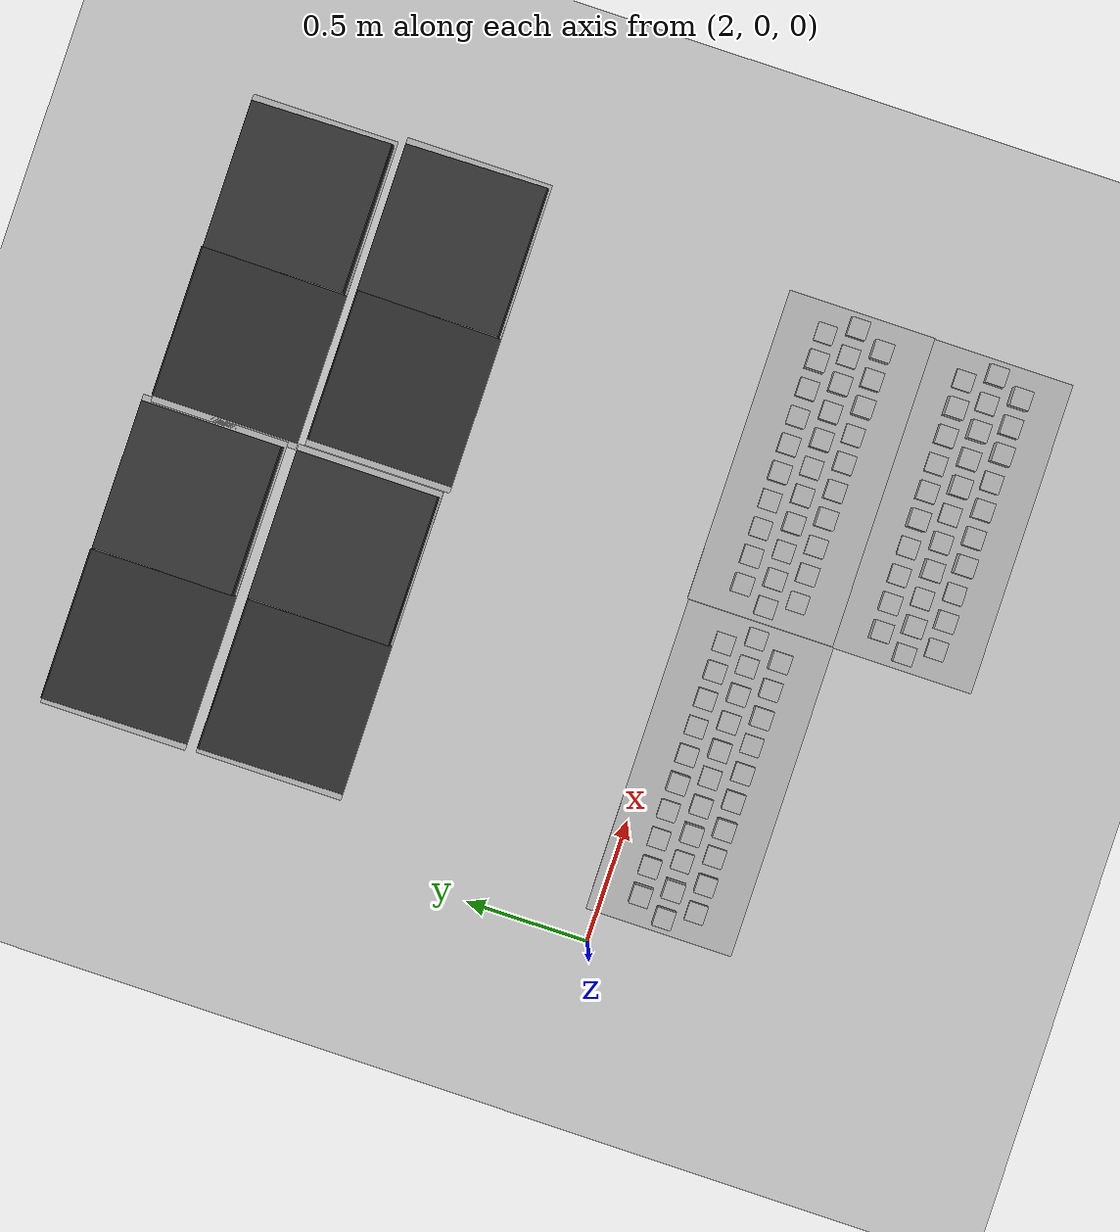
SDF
<sdf version="1.7">
 <world name="default">
  <model name="ground_plane">
   <static>1</static>
   <link name="link">
    <collision name="collision">
     <geometry><plane><normal>0 0 1</normal><size>100 100</size></plane></geometry>
     <surface>
      <contact><collide_bitmask>65535</collide_bitmask></contact>
      <friction><ode><mu>100</mu><mu2>50</mu2></ode></friction>
     </surface>
    </collision>
    <visual name="visual">
     <cast_shadows>0</cast_shadows>
     <geometry><plane><normal>0 0 1</normal><size>100 100</size></plane></geometry>
     <material>
      <script><uri>file://media/materials/scripts/gazebo.material</uri><name>Gazebo/Grey</name></script>
     </material>
    </visual>
   </link>
  </model>
  <model name="frc2016_roughterrain_1">
   <static>1</static>
   <link name="link">
    <visual name="platform">
     <pose>0 0 0.08269 0 -0 0</pose>
     <geometry><box><size>1.27 0.5969 0.003175</size></box></geometry>
    </visual>
    <collision name="platform">
     <pose>0 0 0.08269 0 -0 0</pose>
     <geometry><box><size>1.27 0.5969 0.003175</size></box></geometry>
    </collision>
    <visual name="row1_block1_sm">
     <pose>0.51435 0.1143 0.09698 0 -0 0</pose>
     <geometry><box><size>0.0762 0.0762 0.0254</size></box></geometry>
    </visual>
    <collision name="row1_block1_sm">
     <pose>0.51435 0.1143 0.09698 0 -0 0</pose>
     <geometry><box><size>0.0762 0.0762 0.0254</size></box></geometry>
    </collision>
    <visual name="row1_block2_lg">
     <pose>0.40005 0.1143 0.12238 0 -0 0</pose>
     <geometry><box><size>0.0762 0.0762 0.0762</size></box></geometry>
    </visual>
    <collision name="row1_block2_lg">
     <pose>0.40005 0.1143 0.12238 0 -0 0</pose>
     <geometry><box><size>0.0762 0.0762 0.0762</size></box></geometry>
    </collision>
    <visual name="row1_block3_md">
     <pose>0.28575 0.1143 0.10968 0 -0 0</pose>
     <geometry><box><size>0.0762 0.0762 0.0508</size></box></geometry>
    </visual>
    <collision name="row1_block3_md">
     <pose>0.28575 0.1143 0.10968 0 -0 0</pose>
     <geometry><box><size>0.0762 0.0762 0.0508</size></box></geometry>
    </collision>
    <visual name="row1_block4_sm">
     <pose>0.17145 0.1143 0.09698 0 -0 0</pose>
     <geometry><box><size>0.0762 0.0762 0.0254</size></box></geometry>
    </visual>
    <collision name="row1_block4_sm">
     <pose>0.17145 0.1143 0.09698 0 -0 0</pose>
     <geometry><box><size>0.0762 0.0762 0.0254</size></box></geometry>
    </collision>
    <visual name="row1_block5_md">
     <pose>0.05715 0.1143 0.10968 0 -0 0</pose>
     <geometry><box><size>0.0762 0.0762 0.0508</size></box></geometry>
    </visual>
    <collision name="row1_block5_md">
     <pose>0.05715 0.1143 0.10968 0 -0 0</pose>
     <geometry><box><size>0.0762 0.0762 0.0508</size></box></geometry>
    </collision>
    <visual name="row1_block6_lg">
     <pose>-0.05715 0.1143 0.12238 0 -0 0</pose>
     <geometry><box><size>0.0762 0.0762 0.0762</size></box></geometry>
    </visual>
    <collision name="row1_block6_lg">
     <pose>-0.05715 0.1143 0.12238 0 -0 0</pose>
     <geometry><box><size>0.0762 0.0762 0.0762</size></box></geometry>
    </collision>
    <visual name="row1_block7_sm">
     <pose>-0.17145 0.1143 0.09698 0 -0 0</pose>
     <geometry><box><size>0.0762 0.0762 0.0254</size></box></geometry>
    </visual>
    <collision name="row1_block7_sm">
     <pose>-0.17145 0.1143 0.09698 0 -0 0</pose>
     <geometry><box><size>0.0762 0.0762 0.0254</size></box></geometry>
    </collision>
    <visual name="row1_block8_sm">
     <pose>-0.28575 0.1143 0.09698 0 -0 0</pose>
     <geometry><box><size>0.0762 0.0762 0.0254</size></box></geometry>
    </visual>
    <collision name="row1_block8_sm">
     <pose>-0.28575 0.1143 0.09698 0 -0 0</pose>
     <geometry><box><size>0.0762 0.0762 0.0254</size></box></geometry>
    </collision>
    <visual name="row1_block9_md">
     <pose>-0.40005 0.1143 0.10968 0 -0 0</pose>
     <geometry><box><size>0.0762 0.0762 0.0508</size></box></geometry>
    </visual>
    <collision name="row1_block9_md">
     <pose>-0.40005 0.1143 0.10968 0 -0 0</pose>
     <geometry><box><size>0.0762 0.0762 0.0508</size></box></geometry>
    </collision>
    <visual name="row1_block10_lg">
     <pose>-0.51435 0.1143 0.12238 0 -0 0</pose>
     <geometry><box><size>0.0762 0.0762 0.0762</size></box></geometry>
    </visual>
    <collision name="row1_block10_lg">
     <pose>-0.51435 0.1143 0.12238 0 -0 0</pose>
     <geometry><box><size>0.0762 0.0762 0.0762</size></box></geometry>
    </collision>
    <visual name="row2_block1_md">
     <pose>0.5715 0 0.10968 0 -0 0</pose>
     <geometry><box><size>0.0762 0.0762 0.0508</size></box></geometry>
    </visual>
    <collision name="row2_block1_md">
     <pose>0.5715 0 0.10968 0 -0 0</pose>
     <geometry><box><size>0.0762 0.0762 0.0508</size></box></geometry>
    </collision>
    <visual name="row2_block2_sm">
     <pose>0.4572 0 0.09698 0 -0 0</pose>
     <geometry><box><size>0.0762 0.0762 0.0254</size></box></geometry>
    </visual>
    <collision name="row2_block2_sm">
     <pose>0.4572 0 0.09698 0 -0 0</pose>
     <geometry><box><size>0.0762 0.0762 0.0254</size></box></geometry>
    </collision>
    <visual name="row2_block3_lg">
     <pose>0.3429 0 0.12238 0 -0 0</pose>
     <geometry><box><size>0.0762 0.0762 0.0762</size></box></geometry>
    </visual>
    <collision name="row2_block3_lg">
     <pose>0.3429 0 0.12238 0 -0 0</pose>
     <geometry><box><size>0.0762 0.0762 0.0762</size></box></geometry>
    </collision>
    <visual name="row2_block4_md">
     <pose>0.2286 0 0.10968 0 -0 0</pose>
     <geometry><box><size>0.0762 0.0762 0.0508</size></box></geometry>
    </visual>
    <collision name="row2_block4_md">
     <pose>0.2286 0 0.10968 0 -0 0</pose>
     <geometry><box><size>0.0762 0.0762 0.0508</size></box></geometry>
    </collision>
    <visual name="row2_block5_lg">
     <pose>0.1143 0 0.12238 0 -0 0</pose>
     <geometry><box><size>0.0762 0.0762 0.0762</size></box></geometry>
    </visual>
    <collision name="row2_block5_lg">
     <pose>0.1143 0 0.12238 0 -0 0</pose>
     <geometry><box><size>0.0762 0.0762 0.0762</size></box></geometry>
    </collision>
    <visual name="row2_block6_sm">
     <pose>0 0 0.09698 0 -0 0</pose>
     <geometry><box><size>0.0762 0.0762 0.0254</size></box></geometry>
    </visual>
    <collision name="row2_block6_sm">
     <pose>0 0 0.09698 0 -0 0</pose>
     <geometry><box><size>0.0762 0.0762 0.0254</size></box></geometry>
    </collision>
    <visual name="row2_block7_md">
     <pose>-0.1143 0 0.10968 0 -0 0</pose>
     <geometry><box><size>0.0762 0.0762 0.0508</size></box></geometry>
    </visual>
    <collision name="row2_block7_md">
     <pose>-0.1143 0 0.10968 0 -0 0</pose>
     <geometry><box><size>0.0762 0.0762 0.0508</size></box></geometry>
    </collision>
    <visual name="row2_block8_lg">
     <pose>-0.2286 0 0.12238 0 -0 0</pose>
     <geometry><box><size>0.0762 0.0762 0.0762</size></box></geometry>
    </visual>
    <collision name="row2_block8_lg">
     <pose>-0.2286 0 0.12238 0 -0 0</pose>
     <geometry><box><size>0.0762 0.0762 0.0762</size></box></geometry>
    </collision>
    <visual name="row2_block9_sm">
     <pose>-0.3429 0 0.09698 0 -0 0</pose>
     <geometry><box><size>0.0762 0.0762 0.0254</size></box></geometry>
    </visual>
    <collision name="row2_block9_sm">
     <pose>-0.3429 0 0.09698 0 -0 0</pose>
     <geometry><box><size>0.0762 0.0762 0.0254</size></box></geometry>
    </collision>
    <visual name="row2_block10_lg">
     <pose>-0.4572 0 0.12238 0 -0 0</pose>
     <geometry><box><size>0.0762 0.0762 0.0762</size></box></geometry>
    </visual>
    <collision name="row2_block10_lg">
     <pose>-0.4572 0 0.12238 0 -0 0</pose>
     <geometry><box><size>0.0762 0.0762 0.0762</size></box></geometry>
    </collision>
    <visual name="row2_block11_md">
     <pose>-0.5715 0 0.10968 0 -0 0</pose>
     <geometry><box><size>0.0762 0.0762 0.0508</size></box></geometry>
    </visual>
    <collision name="row2_block11_md">
     <pose>-0.5715 0 0.10968 0 -0 0</pose>
     <geometry><box><size>0.0762 0.0762 0.0508</size></box></geometry>
    </collision>
    <visual name="row3_block1_lg">
     <pose>0.51435 -0.1143 0.12238 0 -0 0</pose>
     <geometry><box><size>0.0762 0.0762 0.0762</size></box></geometry>
    </visual>
    <collision name="row3_block1_lg">
     <pose>0.51435 -0.1143 0.12238 0 -0 0</pose>
     <geometry><box><size>0.0762 0.0762 0.0762</size></box></geometry>
    </collision>
    <visual name="row3_block2_md">
     <pose>0.40005 -0.1143 0.10968 0 -0 0</pose>
     <geometry><box><size>0.0762 0.0762 0.0508</size></box></geometry>
    </visual>
    <collision name="row3_block2_md">
     <pose>0.40005 -0.1143 0.10968 0 -0 0</pose>
     <geometry><box><size>0.0762 0.0762 0.0508</size></box></geometry>
    </collision>
    <visual name="row3_block3_lg">
     <pose>0.28575 -0.1143 0.12238 0 -0 0</pose>
     <geometry><box><size>0.0762 0.0762 0.0762</size></box></geometry>
    </visual>
    <collision name="row3_block3_lg">
     <pose>0.28575 -0.1143 0.12238 0 -0 0</pose>
     <geometry><box><size>0.0762 0.0762 0.0762</size></box></geometry>
    </collision>
    <visual name="row3_block4_sm">
     <pose>0.17145 -0.1143 0.09698 0 -0 0</pose>
     <geometry><box><size>0.0762 0.0762 0.0254</size></box></geometry>
    </visual>
    <collision name="row3_block4_sm">
     <pose>0.17145 -0.1143 0.09698 0 -0 0</pose>
     <geometry><box><size>0.0762 0.0762 0.0254</size></box></geometry>
    </collision>
    <visual name="row3_block5_md">
     <pose>0.05715 -0.1143 0.10968 0 -0 0</pose>
     <geometry><box><size>0.0762 0.0762 0.0508</size></box></geometry>
    </visual>
    <collision name="row3_block5_md">
     <pose>0.05715 -0.1143 0.10968 0 -0 0</pose>
     <geometry><box><size>0.0762 0.0762 0.0508</size></box></geometry>
    </collision>
    <visual name="row3_block6_md">
     <pose>-0.05715 -0.1143 0.10968 0 -0 0</pose>
     <geometry><box><size>0.0762 0.0762 0.0508</size></box></geometry>
    </visual>
    <collision name="row3_block6_md">
     <pose>-0.05715 -0.1143 0.10968 0 -0 0</pose>
     <geometry><box><size>0.0762 0.0762 0.0508</size></box></geometry>
    </collision>
    <visual name="row3_block7_lg">
     <pose>-0.17145 -0.1143 0.12238 0 -0 0</pose>
     <geometry><box><size>0.0762 0.0762 0.0762</size></box></geometry>
    </visual>
    <collision name="row3_block7_lg">
     <pose>-0.17145 -0.1143 0.12238 0 -0 0</pose>
     <geometry><box><size>0.0762 0.0762 0.0762</size></box></geometry>
    </collision>
    <visual name="row3_block8_sm">
     <pose>-0.28575 -0.1143 0.09698 0 -0 0</pose>
     <geometry><box><size>0.0762 0.0762 0.0254</size></box></geometry>
    </visual>
    <collision name="row3_block8_sm">
     <pose>-0.28575 -0.1143 0.09698 0 -0 0</pose>
     <geometry><box><size>0.0762 0.0762 0.0254</size></box></geometry>
    </collision>
    <visual name="row3_block9_md">
     <pose>-0.40005 -0.1143 0.10968 0 -0 0</pose>
     <geometry><box><size>0.0762 0.0762 0.0508</size></box></geometry>
    </visual>
    <collision name="row3_block9_md">
     <pose>-0.40005 -0.1143 0.10968 0 -0 0</pose>
     <geometry><box><size>0.0762 0.0762 0.0508</size></box></geometry>
    </collision>
    <visual name="row3_block10_sm">
     <pose>-0.51435 -0.1143 0.09698 0 -0 0</pose>
     <geometry><box><size>0.0762 0.0762 0.0254</size></box></geometry>
    </visual>
    <collision name="row3_block10_sm">
     <pose>-0.51435 -0.1143 0.09698 0 -0 0</pose>
     <geometry><box><size>0.0762 0.0762 0.0254</size></box></geometry>
    </collision>
   </link>
   <pose>2.76949 -0.245026 0 0 -0 0</pose>
  </model>
  <model name="frc2016_roughterrain_3">
   <static>1</static>
   <link name="link">
    <visual name="platform">
     <pose>0 0 0.08269 0 -0 0</pose>
     <geometry><box><size>1.27 0.5969 0.003175</size></box></geometry>
    </visual>
    <collision name="platform">
     <pose>0 0 0.08269 0 -0 0</pose>
     <geometry><box><size>1.27 0.5969 0.003175</size></box></geometry>
    </collision>
    <visual name="row1_block1_sm">
     <pose>0.51435 0.1143 0.09698 0 -0 0</pose>
     <geometry><box><size>0.0762 0.0762 0.0254</size></box></geometry>
    </visual>
    <collision name="row1_block1_sm">
     <pose>0.51435 0.1143 0.09698 0 -0 0</pose>
     <geometry><box><size>0.0762 0.0762 0.0254</size></box></geometry>
    </collision>
    <visual name="row1_block2_lg">
     <pose>0.40005 0.1143 0.12238 0 -0 0</pose>
     <geometry><box><size>0.0762 0.0762 0.0762</size></box></geometry>
    </visual>
    <collision name="row1_block2_lg">
     <pose>0.40005 0.1143 0.12238 0 -0 0</pose>
     <geometry><box><size>0.0762 0.0762 0.0762</size></box></geometry>
    </collision>
    <visual name="row1_block3_md">
     <pose>0.28575 0.1143 0.10968 0 -0 0</pose>
     <geometry><box><size>0.0762 0.0762 0.0508</size></box></geometry>
    </visual>
    <collision name="row1_block3_md">
     <pose>0.28575 0.1143 0.10968 0 -0 0</pose>
     <geometry><box><size>0.0762 0.0762 0.0508</size></box></geometry>
    </collision>
    <visual name="row1_block4_sm">
     <pose>0.17145 0.1143 0.09698 0 -0 0</pose>
     <geometry><box><size>0.0762 0.0762 0.0254</size></box></geometry>
    </visual>
    <collision name="row1_block4_sm">
     <pose>0.17145 0.1143 0.09698 0 -0 0</pose>
     <geometry><box><size>0.0762 0.0762 0.0254</size></box></geometry>
    </collision>
    <visual name="row1_block5_md">
     <pose>0.05715 0.1143 0.10968 0 -0 0</pose>
     <geometry><box><size>0.0762 0.0762 0.0508</size></box></geometry>
    </visual>
    <collision name="row1_block5_md">
     <pose>0.05715 0.1143 0.10968 0 -0 0</pose>
     <geometry><box><size>0.0762 0.0762 0.0508</size></box></geometry>
    </collision>
    <visual name="row1_block6_lg">
     <pose>-0.05715 0.1143 0.12238 0 -0 0</pose>
     <geometry><box><size>0.0762 0.0762 0.0762</size></box></geometry>
    </visual>
    <collision name="row1_block6_lg">
     <pose>-0.05715 0.1143 0.12238 0 -0 0</pose>
     <geometry><box><size>0.0762 0.0762 0.0762</size></box></geometry>
    </collision>
    <visual name="row1_block7_sm">
     <pose>-0.17145 0.1143 0.09698 0 -0 0</pose>
     <geometry><box><size>0.0762 0.0762 0.0254</size></box></geometry>
    </visual>
    <collision name="row1_block7_sm">
     <pose>-0.17145 0.1143 0.09698 0 -0 0</pose>
     <geometry><box><size>0.0762 0.0762 0.0254</size></box></geometry>
    </collision>
    <visual name="row1_block8_sm">
     <pose>-0.28575 0.1143 0.09698 0 -0 0</pose>
     <geometry><box><size>0.0762 0.0762 0.0254</size></box></geometry>
    </visual>
    <collision name="row1_block8_sm">
     <pose>-0.28575 0.1143 0.09698 0 -0 0</pose>
     <geometry><box><size>0.0762 0.0762 0.0254</size></box></geometry>
    </collision>
    <visual name="row1_block9_md">
     <pose>-0.40005 0.1143 0.10968 0 -0 0</pose>
     <geometry><box><size>0.0762 0.0762 0.0508</size></box></geometry>
    </visual>
    <collision name="row1_block9_md">
     <pose>-0.40005 0.1143 0.10968 0 -0 0</pose>
     <geometry><box><size>0.0762 0.0762 0.0508</size></box></geometry>
    </collision>
    <visual name="row1_block10_lg">
     <pose>-0.51435 0.1143 0.12238 0 -0 0</pose>
     <geometry><box><size>0.0762 0.0762 0.0762</size></box></geometry>
    </visual>
    <collision name="row1_block10_lg">
     <pose>-0.51435 0.1143 0.12238 0 -0 0</pose>
     <geometry><box><size>0.0762 0.0762 0.0762</size></box></geometry>
    </collision>
    <visual name="row2_block1_md">
     <pose>0.5715 0 0.10968 0 -0 0</pose>
     <geometry><box><size>0.0762 0.0762 0.0508</size></box></geometry>
    </visual>
    <collision name="row2_block1_md">
     <pose>0.5715 0 0.10968 0 -0 0</pose>
     <geometry><box><size>0.0762 0.0762 0.0508</size></box></geometry>
    </collision>
    <visual name="row2_block2_sm">
     <pose>0.4572 0 0.09698 0 -0 0</pose>
     <geometry><box><size>0.0762 0.0762 0.0254</size></box></geometry>
    </visual>
    <collision name="row2_block2_sm">
     <pose>0.4572 0 0.09698 0 -0 0</pose>
     <geometry><box><size>0.0762 0.0762 0.0254</size></box></geometry>
    </collision>
    <visual name="row2_block3_lg">
     <pose>0.3429 0 0.12238 0 -0 0</pose>
     <geometry><box><size>0.0762 0.0762 0.0762</size></box></geometry>
    </visual>
    <collision name="row2_block3_lg">
     <pose>0.3429 0 0.12238 0 -0 0</pose>
     <geometry><box><size>0.0762 0.0762 0.0762</size></box></geometry>
    </collision>
    <visual name="row2_block4_md">
     <pose>0.2286 0 0.10968 0 -0 0</pose>
     <geometry><box><size>0.0762 0.0762 0.0508</size></box></geometry>
    </visual>
    <collision name="row2_block4_md">
     <pose>0.2286 0 0.10968 0 -0 0</pose>
     <geometry><box><size>0.0762 0.0762 0.0508</size></box></geometry>
    </collision>
    <visual name="row2_block5_lg">
     <pose>0.1143 0 0.12238 0 -0 0</pose>
     <geometry><box><size>0.0762 0.0762 0.0762</size></box></geometry>
    </visual>
    <collision name="row2_block5_lg">
     <pose>0.1143 0 0.12238 0 -0 0</pose>
     <geometry><box><size>0.0762 0.0762 0.0762</size></box></geometry>
    </collision>
    <visual name="row2_block6_sm">
     <pose>0 0 0.09698 0 -0 0</pose>
     <geometry><box><size>0.0762 0.0762 0.0254</size></box></geometry>
    </visual>
    <collision name="row2_block6_sm">
     <pose>0 0 0.09698 0 -0 0</pose>
     <geometry><box><size>0.0762 0.0762 0.0254</size></box></geometry>
    </collision>
    <visual name="row2_block7_md">
     <pose>-0.1143 0 0.10968 0 -0 0</pose>
     <geometry><box><size>0.0762 0.0762 0.0508</size></box></geometry>
    </visual>
    <collision name="row2_block7_md">
     <pose>-0.1143 0 0.10968 0 -0 0</pose>
     <geometry><box><size>0.0762 0.0762 0.0508</size></box></geometry>
    </collision>
    <visual name="row2_block8_lg">
     <pose>-0.2286 0 0.12238 0 -0 0</pose>
     <geometry><box><size>0.0762 0.0762 0.0762</size></box></geometry>
    </visual>
    <collision name="row2_block8_lg">
     <pose>-0.2286 0 0.12238 0 -0 0</pose>
     <geometry><box><size>0.0762 0.0762 0.0762</size></box></geometry>
    </collision>
    <visual name="row2_block9_sm">
     <pose>-0.3429 0 0.09698 0 -0 0</pose>
     <geometry><box><size>0.0762 0.0762 0.0254</size></box></geometry>
    </visual>
    <collision name="row2_block9_sm">
     <pose>-0.3429 0 0.09698 0 -0 0</pose>
     <geometry><box><size>0.0762 0.0762 0.0254</size></box></geometry>
    </collision>
    <visual name="row2_block10_lg">
     <pose>-0.4572 0 0.12238 0 -0 0</pose>
     <geometry><box><size>0.0762 0.0762 0.0762</size></box></geometry>
    </visual>
    <collision name="row2_block10_lg">
     <pose>-0.4572 0 0.12238 0 -0 0</pose>
     <geometry><box><size>0.0762 0.0762 0.0762</size></box></geometry>
    </collision>
    <visual name="row2_block11_md">
     <pose>-0.5715 0 0.10968 0 -0 0</pose>
     <geometry><box><size>0.0762 0.0762 0.0508</size></box></geometry>
    </visual>
    <collision name="row2_block11_md">
     <pose>-0.5715 0 0.10968 0 -0 0</pose>
     <geometry><box><size>0.0762 0.0762 0.0508</size></box></geometry>
    </collision>
    <visual name="row3_block1_lg">
     <pose>0.51435 -0.1143 0.12238 0 -0 0</pose>
     <geometry><box><size>0.0762 0.0762 0.0762</size></box></geometry>
    </visual>
    <collision name="row3_block1_lg">
     <pose>0.51435 -0.1143 0.12238 0 -0 0</pose>
     <geometry><box><size>0.0762 0.0762 0.0762</size></box></geometry>
    </collision>
    <visual name="row3_block2_md">
     <pose>0.40005 -0.1143 0.10968 0 -0 0</pose>
     <geometry><box><size>0.0762 0.0762 0.0508</size></box></geometry>
    </visual>
    <collision name="row3_block2_md">
     <pose>0.40005 -0.1143 0.10968 0 -0 0</pose>
     <geometry><box><size>0.0762 0.0762 0.0508</size></box></geometry>
    </collision>
    <visual name="row3_block3_lg">
     <pose>0.28575 -0.1143 0.12238 0 -0 0</pose>
     <geometry><box><size>0.0762 0.0762 0.0762</size></box></geometry>
    </visual>
    <collision name="row3_block3_lg">
     <pose>0.28575 -0.1143 0.12238 0 -0 0</pose>
     <geometry><box><size>0.0762 0.0762 0.0762</size></box></geometry>
    </collision>
    <visual name="row3_block4_sm">
     <pose>0.17145 -0.1143 0.09698 0 -0 0</pose>
     <geometry><box><size>0.0762 0.0762 0.0254</size></box></geometry>
    </visual>
    <collision name="row3_block4_sm">
     <pose>0.17145 -0.1143 0.09698 0 -0 0</pose>
     <geometry><box><size>0.0762 0.0762 0.0254</size></box></geometry>
    </collision>
    <visual name="row3_block5_md">
     <pose>0.05715 -0.1143 0.10968 0 -0 0</pose>
     <geometry><box><size>0.0762 0.0762 0.0508</size></box></geometry>
    </visual>
    <collision name="row3_block5_md">
     <pose>0.05715 -0.1143 0.10968 0 -0 0</pose>
     <geometry><box><size>0.0762 0.0762 0.0508</size></box></geometry>
    </collision>
    <visual name="row3_block6_md">
     <pose>-0.05715 -0.1143 0.10968 0 -0 0</pose>
     <geometry><box><size>0.0762 0.0762 0.0508</size></box></geometry>
    </visual>
    <collision name="row3_block6_md">
     <pose>-0.05715 -0.1143 0.10968 0 -0 0</pose>
     <geometry><box><size>0.0762 0.0762 0.0508</size></box></geometry>
    </collision>
    <visual name="row3_block7_lg">
     <pose>-0.17145 -0.1143 0.12238 0 -0 0</pose>
     <geometry><box><size>0.0762 0.0762 0.0762</size></box></geometry>
    </visual>
    <collision name="row3_block7_lg">
     <pose>-0.17145 -0.1143 0.12238 0 -0 0</pose>
     <geometry><box><size>0.0762 0.0762 0.0762</size></box></geometry>
    </collision>
    <visual name="row3_block8_sm">
     <pose>-0.28575 -0.1143 0.09698 0 -0 0</pose>
     <geometry><box><size>0.0762 0.0762 0.0254</size></box></geometry>
    </visual>
    <collision name="row3_block8_sm">
     <pose>-0.28575 -0.1143 0.09698 0 -0 0</pose>
     <geometry><box><size>0.0762 0.0762 0.0254</size></box></geometry>
    </collision>
    <visual name="row3_block9_md">
     <pose>-0.40005 -0.1143 0.10968 0 -0 0</pose>
     <geometry><box><size>0.0762 0.0762 0.0508</size></box></geometry>
    </visual>
    <collision name="row3_block9_md">
     <pose>-0.40005 -0.1143 0.10968 0 -0 0</pose>
     <geometry><box><size>0.0762 0.0762 0.0508</size></box></geometry>
    </collision>
    <visual name="row3_block10_sm">
     <pose>-0.51435 -0.1143 0.09698 0 -0 0</pose>
     <geometry><box><size>0.0762 0.0762 0.0254</size></box></geometry>
    </visual>
    <collision name="row3_block10_sm">
     <pose>-0.51435 -0.1143 0.09698 0 -0 0</pose>
     <geometry><box><size>0.0762 0.0762 0.0254</size></box></geometry>
    </collision>
   </link>
   <pose>4.04009 -0.239486 0 0 -0 0</pose>
  </model>
  <model name="frc2016_roughterrain_4">
   <static>1</static>
   <link name="link">
    <visual name="platform">
     <pose>0 0 0.08269 0 -0 0</pose>
     <geometry><box><size>1.27 0.5969 0.003175</size></box></geometry>
    </visual>
    <collision name="platform">
     <pose>0 0 0.08269 0 -0 0</pose>
     <geometry><box><size>1.27 0.5969 0.003175</size></box></geometry>
    </collision>
    <visual name="row1_block1_sm">
     <pose>0.51435 0.1143 0.09698 0 -0 0</pose>
     <geometry><box><size>0.0762 0.0762 0.0254</size></box></geometry>
    </visual>
    <collision name="row1_block1_sm">
     <pose>0.51435 0.1143 0.09698 0 -0 0</pose>
     <geometry><box><size>0.0762 0.0762 0.0254</size></box></geometry>
    </collision>
    <visual name="row1_block2_lg">
     <pose>0.40005 0.1143 0.12238 0 -0 0</pose>
     <geometry><box><size>0.0762 0.0762 0.0762</size></box></geometry>
    </visual>
    <collision name="row1_block2_lg">
     <pose>0.40005 0.1143 0.12238 0 -0 0</pose>
     <geometry><box><size>0.0762 0.0762 0.0762</size></box></geometry>
    </collision>
    <visual name="row1_block3_md">
     <pose>0.28575 0.1143 0.10968 0 -0 0</pose>
     <geometry><box><size>0.0762 0.0762 0.0508</size></box></geometry>
    </visual>
    <collision name="row1_block3_md">
     <pose>0.28575 0.1143 0.10968 0 -0 0</pose>
     <geometry><box><size>0.0762 0.0762 0.0508</size></box></geometry>
    </collision>
    <visual name="row1_block4_sm">
     <pose>0.17145 0.1143 0.09698 0 -0 0</pose>
     <geometry><box><size>0.0762 0.0762 0.0254</size></box></geometry>
    </visual>
    <collision name="row1_block4_sm">
     <pose>0.17145 0.1143 0.09698 0 -0 0</pose>
     <geometry><box><size>0.0762 0.0762 0.0254</size></box></geometry>
    </collision>
    <visual name="row1_block5_md">
     <pose>0.05715 0.1143 0.10968 0 -0 0</pose>
     <geometry><box><size>0.0762 0.0762 0.0508</size></box></geometry>
    </visual>
    <collision name="row1_block5_md">
     <pose>0.05715 0.1143 0.10968 0 -0 0</pose>
     <geometry><box><size>0.0762 0.0762 0.0508</size></box></geometry>
    </collision>
    <visual name="row1_block6_lg">
     <pose>-0.05715 0.1143 0.12238 0 -0 0</pose>
     <geometry><box><size>0.0762 0.0762 0.0762</size></box></geometry>
    </visual>
    <collision name="row1_block6_lg">
     <pose>-0.05715 0.1143 0.12238 0 -0 0</pose>
     <geometry><box><size>0.0762 0.0762 0.0762</size></box></geometry>
    </collision>
    <visual name="row1_block7_sm">
     <pose>-0.17145 0.1143 0.09698 0 -0 0</pose>
     <geometry><box><size>0.0762 0.0762 0.0254</size></box></geometry>
    </visual>
    <collision name="row1_block7_sm">
     <pose>-0.17145 0.1143 0.09698 0 -0 0</pose>
     <geometry><box><size>0.0762 0.0762 0.0254</size></box></geometry>
    </collision>
    <visual name="row1_block8_sm">
     <pose>-0.28575 0.1143 0.09698 0 -0 0</pose>
     <geometry><box><size>0.0762 0.0762 0.0254</size></box></geometry>
    </visual>
    <collision name="row1_block8_sm">
     <pose>-0.28575 0.1143 0.09698 0 -0 0</pose>
     <geometry><box><size>0.0762 0.0762 0.0254</size></box></geometry>
    </collision>
    <visual name="row1_block9_md">
     <pose>-0.40005 0.1143 0.10968 0 -0 0</pose>
     <geometry><box><size>0.0762 0.0762 0.0508</size></box></geometry>
    </visual>
    <collision name="row1_block9_md">
     <pose>-0.40005 0.1143 0.10968 0 -0 0</pose>
     <geometry><box><size>0.0762 0.0762 0.0508</size></box></geometry>
    </collision>
    <visual name="row1_block10_lg">
     <pose>-0.51435 0.1143 0.12238 0 -0 0</pose>
     <geometry><box><size>0.0762 0.0762 0.0762</size></box></geometry>
    </visual>
    <collision name="row1_block10_lg">
     <pose>-0.51435 0.1143 0.12238 0 -0 0</pose>
     <geometry><box><size>0.0762 0.0762 0.0762</size></box></geometry>
    </collision>
    <visual name="row2_block1_md">
     <pose>0.5715 0 0.10968 0 -0 0</pose>
     <geometry><box><size>0.0762 0.0762 0.0508</size></box></geometry>
    </visual>
    <collision name="row2_block1_md">
     <pose>0.5715 0 0.10968 0 -0 0</pose>
     <geometry><box><size>0.0762 0.0762 0.0508</size></box></geometry>
    </collision>
    <visual name="row2_block2_sm">
     <pose>0.4572 0 0.09698 0 -0 0</pose>
     <geometry><box><size>0.0762 0.0762 0.0254</size></box></geometry>
    </visual>
    <collision name="row2_block2_sm">
     <pose>0.4572 0 0.09698 0 -0 0</pose>
     <geometry><box><size>0.0762 0.0762 0.0254</size></box></geometry>
    </collision>
    <visual name="row2_block3_lg">
     <pose>0.3429 0 0.12238 0 -0 0</pose>
     <geometry><box><size>0.0762 0.0762 0.0762</size></box></geometry>
    </visual>
    <collision name="row2_block3_lg">
     <pose>0.3429 0 0.12238 0 -0 0</pose>
     <geometry><box><size>0.0762 0.0762 0.0762</size></box></geometry>
    </collision>
    <visual name="row2_block4_md">
     <pose>0.2286 0 0.10968 0 -0 0</pose>
     <geometry><box><size>0.0762 0.0762 0.0508</size></box></geometry>
    </visual>
    <collision name="row2_block4_md">
     <pose>0.2286 0 0.10968 0 -0 0</pose>
     <geometry><box><size>0.0762 0.0762 0.0508</size></box></geometry>
    </collision>
    <visual name="row2_block5_lg">
     <pose>0.1143 0 0.12238 0 -0 0</pose>
     <geometry><box><size>0.0762 0.0762 0.0762</size></box></geometry>
    </visual>
    <collision name="row2_block5_lg">
     <pose>0.1143 0 0.12238 0 -0 0</pose>
     <geometry><box><size>0.0762 0.0762 0.0762</size></box></geometry>
    </collision>
    <visual name="row2_block6_sm">
     <pose>0 0 0.09698 0 -0 0</pose>
     <geometry><box><size>0.0762 0.0762 0.0254</size></box></geometry>
    </visual>
    <collision name="row2_block6_sm">
     <pose>0 0 0.09698 0 -0 0</pose>
     <geometry><box><size>0.0762 0.0762 0.0254</size></box></geometry>
    </collision>
    <visual name="row2_block7_md">
     <pose>-0.1143 0 0.10968 0 -0 0</pose>
     <geometry><box><size>0.0762 0.0762 0.0508</size></box></geometry>
    </visual>
    <collision name="row2_block7_md">
     <pose>-0.1143 0 0.10968 0 -0 0</pose>
     <geometry><box><size>0.0762 0.0762 0.0508</size></box></geometry>
    </collision>
    <visual name="row2_block8_lg">
     <pose>-0.2286 0 0.12238 0 -0 0</pose>
     <geometry><box><size>0.0762 0.0762 0.0762</size></box></geometry>
    </visual>
    <collision name="row2_block8_lg">
     <pose>-0.2286 0 0.12238 0 -0 0</pose>
     <geometry><box><size>0.0762 0.0762 0.0762</size></box></geometry>
    </collision>
    <visual name="row2_block9_sm">
     <pose>-0.3429 0 0.09698 0 -0 0</pose>
     <geometry><box><size>0.0762 0.0762 0.0254</size></box></geometry>
    </visual>
    <collision name="row2_block9_sm">
     <pose>-0.3429 0 0.09698 0 -0 0</pose>
     <geometry><box><size>0.0762 0.0762 0.0254</size></box></geometry>
    </collision>
    <visual name="row2_block10_lg">
     <pose>-0.4572 0 0.12238 0 -0 0</pose>
     <geometry><box><size>0.0762 0.0762 0.0762</size></box></geometry>
    </visual>
    <collision name="row2_block10_lg">
     <pose>-0.4572 0 0.12238 0 -0 0</pose>
     <geometry><box><size>0.0762 0.0762 0.0762</size></box></geometry>
    </collision>
    <visual name="row2_block11_md">
     <pose>-0.5715 0 0.10968 0 -0 0</pose>
     <geometry><box><size>0.0762 0.0762 0.0508</size></box></geometry>
    </visual>
    <collision name="row2_block11_md">
     <pose>-0.5715 0 0.10968 0 -0 0</pose>
     <geometry><box><size>0.0762 0.0762 0.0508</size></box></geometry>
    </collision>
    <visual name="row3_block1_lg">
     <pose>0.51435 -0.1143 0.12238 0 -0 0</pose>
     <geometry><box><size>0.0762 0.0762 0.0762</size></box></geometry>
    </visual>
    <collision name="row3_block1_lg">
     <pose>0.51435 -0.1143 0.12238 0 -0 0</pose>
     <geometry><box><size>0.0762 0.0762 0.0762</size></box></geometry>
    </collision>
    <visual name="row3_block2_md">
     <pose>0.40005 -0.1143 0.10968 0 -0 0</pose>
     <geometry><box><size>0.0762 0.0762 0.0508</size></box></geometry>
    </visual>
    <collision name="row3_block2_md">
     <pose>0.40005 -0.1143 0.10968 0 -0 0</pose>
     <geometry><box><size>0.0762 0.0762 0.0508</size></box></geometry>
    </collision>
    <visual name="row3_block3_lg">
     <pose>0.28575 -0.1143 0.12238 0 -0 0</pose>
     <geometry><box><size>0.0762 0.0762 0.0762</size></box></geometry>
    </visual>
    <collision name="row3_block3_lg">
     <pose>0.28575 -0.1143 0.12238 0 -0 0</pose>
     <geometry><box><size>0.0762 0.0762 0.0762</size></box></geometry>
    </collision>
    <visual name="row3_block4_sm">
     <pose>0.17145 -0.1143 0.09698 0 -0 0</pose>
     <geometry><box><size>0.0762 0.0762 0.0254</size></box></geometry>
    </visual>
    <collision name="row3_block4_sm">
     <pose>0.17145 -0.1143 0.09698 0 -0 0</pose>
     <geometry><box><size>0.0762 0.0762 0.0254</size></box></geometry>
    </collision>
    <visual name="row3_block5_md">
     <pose>0.05715 -0.1143 0.10968 0 -0 0</pose>
     <geometry><box><size>0.0762 0.0762 0.0508</size></box></geometry>
    </visual>
    <collision name="row3_block5_md">
     <pose>0.05715 -0.1143 0.10968 0 -0 0</pose>
     <geometry><box><size>0.0762 0.0762 0.0508</size></box></geometry>
    </collision>
    <visual name="row3_block6_md">
     <pose>-0.05715 -0.1143 0.10968 0 -0 0</pose>
     <geometry><box><size>0.0762 0.0762 0.0508</size></box></geometry>
    </visual>
    <collision name="row3_block6_md">
     <pose>-0.05715 -0.1143 0.10968 0 -0 0</pose>
     <geometry><box><size>0.0762 0.0762 0.0508</size></box></geometry>
    </collision>
    <visual name="row3_block7_lg">
     <pose>-0.17145 -0.1143 0.12238 0 -0 0</pose>
     <geometry><box><size>0.0762 0.0762 0.0762</size></box></geometry>
    </visual>
    <collision name="row3_block7_lg">
     <pose>-0.17145 -0.1143 0.12238 0 -0 0</pose>
     <geometry><box><size>0.0762 0.0762 0.0762</size></box></geometry>
    </collision>
    <visual name="row3_block8_sm">
     <pose>-0.28575 -0.1143 0.09698 0 -0 0</pose>
     <geometry><box><size>0.0762 0.0762 0.0254</size></box></geometry>
    </visual>
    <collision name="row3_block8_sm">
     <pose>-0.28575 -0.1143 0.09698 0 -0 0</pose>
     <geometry><box><size>0.0762 0.0762 0.0254</size></box></geometry>
    </collision>
    <visual name="row3_block9_md">
     <pose>-0.40005 -0.1143 0.10968 0 -0 0</pose>
     <geometry><box><size>0.0762 0.0762 0.0508</size></box></geometry>
    </visual>
    <collision name="row3_block9_md">
     <pose>-0.40005 -0.1143 0.10968 0 -0 0</pose>
     <geometry><box><size>0.0762 0.0762 0.0508</size></box></geometry>
    </collision>
    <visual name="row3_block10_sm">
     <pose>-0.51435 -0.1143 0.09698 0 -0 0</pose>
     <geometry><box><size>0.0762 0.0762 0.0254</size></box></geometry>
    </visual>
    <collision name="row3_block10_sm">
     <pose>-0.51435 -0.1143 0.09698 0 -0 0</pose>
     <geometry><box><size>0.0762 0.0762 0.0254</size></box></geometry>
    </collision>
   </link>
   <pose>4.03664 -0.809505 0 0 -0 0</pose>
  </model>
  <model name="frc2016_ramparts_1">
   <static>1</static>
   <link name="link">
    <visual name="platform">
     <pose>0 0 0.06967 0 -0 0</pose>
     <geometry><box><size>1.27 0.5969 0.003175</size></box></geometry>
    </visual>
    <collision name="platform">
     <pose>0 0 0.06967 0 -0 0</pose>
     <geometry><box><size>1.27 0.5969 0.003175</size></box></geometry>
    </collision>
    <visual name="ramp1">
     <pose>0.30472 0.00588 0.1109 -0.13 0 0</pose>
     <geometry><box><size>0.60957 0.588891 0.00462</size></box></geometry>
     <material><ambient>0.2 0.2 0.2 1</ambient><diffuse>0.2 0.2 0.2 1</diffuse></material>
    </visual>
    <collision name="ramp1">
     <pose>0.30472 0.00588 0.1109 -0.13 0 0</pose>
     <geometry><box><size>0.60957 0.588891 0.00462</size></box></geometry>
    </collision>
    <visual name="up1">
     <pose>0.30472 -0.28806 0.11072 0 -0 0</pose>
     <geometry><box><size>0.60957 0.00462 0.07872</size></box></geometry>
     <material><ambient>0.2 0.2 0.2 1</ambient><diffuse>0.2 0.2 0.2 1</diffuse></material>
    </visual>
    <collision name="up1">
     <pose>0.30472 -0.28806 0.11072 0 -0 0</pose>
     <geometry><box><size>0.60957 0.00462 0.07872</size></box></geometry>
    </collision>
    <visual name="ramp2">
     <pose>-0.30472 -0.00619 0.1109 0.13 -0 0</pose>
     <geometry><box><size>0.60957 0.588891 0.00462</size></box></geometry>
     <material><ambient>0.2 0.2 0.2 1</ambient><diffuse>0.2 0.2 0.2 1</diffuse></material>
    </visual>
    <collision name="ramp2">
     <pose>-0.30472 -0.00619 0.1109 0.13 -0 0</pose>
     <geometry><box><size>0.60957 0.588891 0.00462</size></box></geometry>
    </collision>
    <visual name="up2">
     <pose>-0.30472 0.28806 0.11072 0 -0 0</pose>
     <geometry><box><size>0.60957 0.00462 0.07872</size></box></geometry>
     <material><ambient>0.2 0.2 0.2 1</ambient><diffuse>0.2 0.2 0.2 1</diffuse></material>
    </visual>
    <collision name="up2">
     <pose>-0.30472 0.28806 0.11072 0 -0 0</pose>
     <geometry><box><size>0.60957 0.00462 0.07872</size></box></geometry>
    </collision>
   </link>
   <pose>2.86355 1.39159 0 0 -0 0</pose>
  </model>
  <model name="frc2016_ramparts_2">
   <static>1</static>
   <link name="link">
    <visual name="platform">
     <pose>0 0 0.06967 0 -0 0</pose>
     <geometry><box><size>1.27 0.5969 0.003175</size></box></geometry>
    </visual>
    <collision name="platform">
     <pose>0 0 0.06967 0 -0 0</pose>
     <geometry><box><size>1.27 0.5969 0.003175</size></box></geometry>
    </collision>
    <visual name="ramp1">
     <pose>0.30472 0.00588 0.1109 -0.13 0 0</pose>
     <geometry><box><size>0.60957 0.588891 0.00462</size></box></geometry>
     <material><ambient>0.2 0.2 0.2 1</ambient><diffuse>0.2 0.2 0.2 1</diffuse></material>
    </visual>
    <collision name="ramp1">
     <pose>0.30472 0.00588 0.1109 -0.13 0 0</pose>
     <geometry><box><size>0.60957 0.588891 0.00462</size></box></geometry>
    </collision>
    <visual name="up1">
     <pose>0.30472 -0.28806 0.11072 0 -0 0</pose>
     <geometry><box><size>0.60957 0.00462 0.07872</size></box></geometry>
     <material><ambient>0.2 0.2 0.2 1</ambient><diffuse>0.2 0.2 0.2 1</diffuse></material>
    </visual>
    <collision name="up1">
     <pose>0.30472 -0.28806 0.11072 0 -0 0</pose>
     <geometry><box><size>0.60957 0.00462 0.07872</size></box></geometry>
    </collision>
    <visual name="ramp2">
     <pose>-0.30472 -0.00619 0.1109 0.13 -0 0</pose>
     <geometry><box><size>0.60957 0.588891 0.00462</size></box></geometry>
     <material><ambient>0.2 0.2 0.2 1</ambient><diffuse>0.2 0.2 0.2 1</diffuse></material>
    </visual>
    <collision name="ramp2">
     <pose>-0.30472 -0.00619 0.1109 0.13 -0 0</pose>
     <geometry><box><size>0.60957 0.588891 0.00462</size></box></geometry>
    </collision>
    <visual name="up2">
     <pose>-0.30472 0.28806 0.11072 0 -0 0</pose>
     <geometry><box><size>0.60957 0.00462 0.07872</size></box></geometry>
     <material><ambient>0.2 0.2 0.2 1</ambient><diffuse>0.2 0.2 0.2 1</diffuse></material>
    </visual>
    <collision name="up2">
     <pose>-0.30472 0.28806 0.11072 0 -0 0</pose>
     <geometry><box><size>0.60957 0.00462 0.07872</size></box></geometry>
    </collision>
   </link>
   <pose>2.8566 2.03028 0 0 -0 0</pose>
  </model>
  <model name="frc2016_ramparts_3">
   <static>1</static>
   <link name="link">
    <visual name="platform">
     <pose>0 0 0.06967 0 -0 0</pose>
     <geometry><box><size>1.27 0.5969 0.003175</size></box></geometry>
    </visual>
    <collision name="platform">
     <pose>0 0 0.06967 0 -0 0</pose>
     <geometry><box><size>1.27 0.5969 0.003175</size></box></geometry>
    </collision>
    <visual name="ramp1">
     <pose>0.30472 0.00588 0.1109 -0.13 0 0</pose>
     <geometry><box><size>0.60957 0.588891 0.00462</size></box></geometry>
     <material><ambient>0.2 0.2 0.2 1</ambient><diffuse>0.2 0.2 0.2 1</diffuse></material>
    </visual>
    <collision name="ramp1">
     <pose>0.30472 0.00588 0.1109 -0.13 0 0</pose>
     <geometry><box><size>0.60957 0.588891 0.00462</size></box></geometry>
    </collision>
    <visual name="up1">
     <pose>0.30472 -0.28806 0.11072 0 -0 0</pose>
     <geometry><box><size>0.60957 0.00462 0.07872</size></box></geometry>
     <material><ambient>0.2 0.2 0.2 1</ambient><diffuse>0.2 0.2 0.2 1</diffuse></material>
    </visual>
    <collision name="up1">
     <pose>0.30472 -0.28806 0.11072 0 -0 0</pose>
     <geometry><box><size>0.60957 0.00462 0.07872</size></box></geometry>
    </collision>
    <visual name="ramp2">
     <pose>-0.30472 -0.00619 0.1109 0.13 -0 0</pose>
     <geometry><box><size>0.60957 0.588891 0.00462</size></box></geometry>
     <material><ambient>0.2 0.2 0.2 1</ambient><diffuse>0.2 0.2 0.2 1</diffuse></material>
    </visual>
    <collision name="ramp2">
     <pose>-0.30472 -0.00619 0.1109 0.13 -0 0</pose>
     <geometry><box><size>0.60957 0.588891 0.00462</size></box></geometry>
    </collision>
    <visual name="up2">
     <pose>-0.30472 0.28806 0.11072 0 -0 0</pose>
     <geometry><box><size>0.60957 0.00462 0.07872</size></box></geometry>
     <material><ambient>0.2 0.2 0.2 1</ambient><diffuse>0.2 0.2 0.2 1</diffuse></material>
    </visual>
    <collision name="up2">
     <pose>-0.30472 0.28806 0.11072 0 -0 0</pose>
     <geometry><box><size>0.60957 0.00462 0.07872</size></box></geometry>
    </collision>
   </link>
   <pose>4.13569 1.36754 0 0 -0 0</pose>
  </model>
  <model name="frc2016_ramparts_4">
   <static>1</static>
   <link name="link">
    <visual name="platform">
     <pose>0 0 0.06967 0 -0 0</pose>
     <geometry><box><size>1.27 0.5969 0.003175</size></box></geometry>
    </visual>
    <collision name="platform">
     <pose>0 0 0.06967 0 -0 0</pose>
     <geometry><box><size>1.27 0.5969 0.003175</size></box></geometry>
    </collision>
    <visual name="ramp1">
     <pose>0.30472 0.00588 0.1109 -0.13 0 0</pose>
     <geometry><box><size>0.60957 0.588891 0.00462</size></box></geometry>
     <material><ambient>0.2 0.2 0.2 1</ambient><diffuse>0.2 0.2 0.2 1</diffuse></material>
    </visual>
    <collision name="ramp1">
     <pose>0.30472 0.00588 0.1109 -0.13 0 0</pose>
     <geometry><box><size>0.60957 0.588891 0.00462</size></box></geometry>
    </collision>
    <visual name="up1">
     <pose>0.30472 -0.28806 0.11072 0 -0 0</pose>
     <geometry><box><size>0.60957 0.00462 0.07872</size></box></geometry>
     <material><ambient>0.2 0.2 0.2 1</ambient><diffuse>0.2 0.2 0.2 1</diffuse></material>
    </visual>
    <collision name="up1">
     <pose>0.30472 -0.28806 0.11072 0 -0 0</pose>
     <geometry><box><size>0.60957 0.00462 0.07872</size></box></geometry>
    </collision>
    <visual name="ramp2">
     <pose>-0.30472 -0.00619 0.1109 0.13 -0 0</pose>
     <geometry><box><size>0.60957 0.588891 0.00462</size></box></geometry>
     <material><ambient>0.2 0.2 0.2 1</ambient><diffuse>0.2 0.2 0.2 1</diffuse></material>
    </visual>
    <collision name="ramp2">
     <pose>-0.30472 -0.00619 0.1109 0.13 -0 0</pose>
     <geometry><box><size>0.60957 0.588891 0.00462</size></box></geometry>
    </collision>
    <visual name="up2">
     <pose>-0.30472 0.28806 0.11072 0 -0 0</pose>
     <geometry><box><size>0.60957 0.00462 0.07872</size></box></geometry>
     <material><ambient>0.2 0.2 0.2 1</ambient><diffuse>0.2 0.2 0.2 1</diffuse></material>
    </visual>
    <collision name="up2">
     <pose>-0.30472 0.28806 0.11072 0 -0 0</pose>
     <geometry><box><size>0.60957 0.00462 0.07872</size></box></geometry>
    </collision>
   </link>
   <pose>4.10681 1.99392 0 0 -0 0</pose>
  </model>
 </world>
</sdf>
